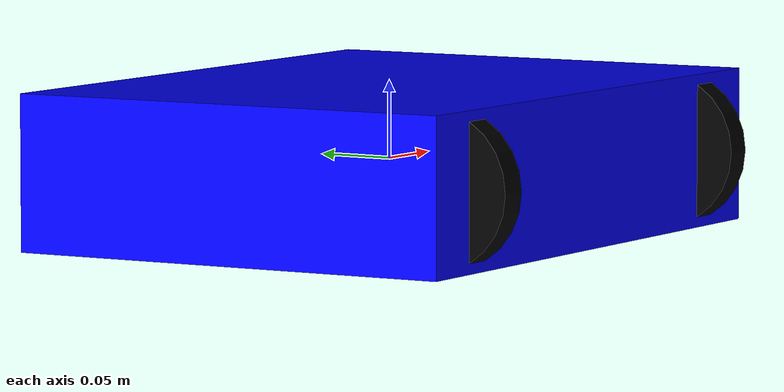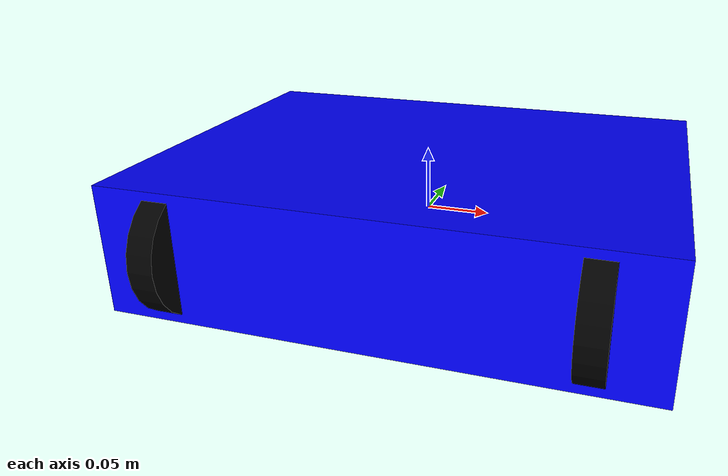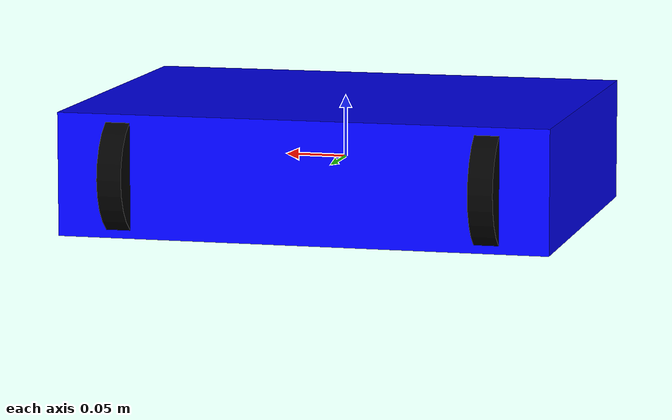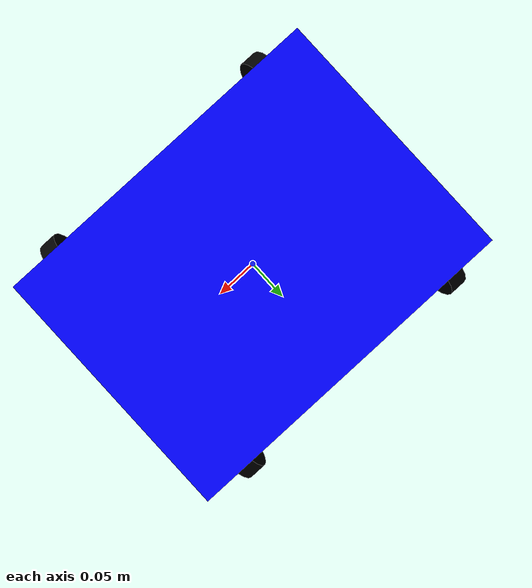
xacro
<?xml version="1.0"?>
<robot xmlns:xacro="http://www.ros.org/wiki/xacro" name="my_robot">

  <!-- ================= BODY ================= -->
  <link name="base_link">
    <visual>
      <geometry>
        <box size="0.4 0.3 0.1"/> <!-- length, width, height -->
      </geometry>
      <material name="blue">
        <color rgba="0 0 1 1"/>
      </material>
    </visual>
    <collision>
      <geometry>
        <box size="0.4 0.3 0.1"/>
      </geometry>
    </collision>
    <inertial>
      <mass value="5.0"/>
      <inertia ixx="0.1" ixy="0.0" ixz="0.0" iyy="0.1" iyz="0.0" izz="0.1"/>
    </inertial>
  </link>

  <!-- ================= WHEELS ================= -->
  <xacro:property name="wheel_radius" value="0.05"/>
  <xacro:property name="wheel_width" value="0.02"/>
  <xacro:property name="wheel_y_offset" value="0.125"/> <!-- half of width of robot -->
  <xacro:property name="wheel_x_offset" value="0.15"/>  <!-- half of length of robot -->

  <!-- Front Left Wheel -->
  <link name="wheel_fl">
    <visual>
      <geometry>
        <cylinder radius="${wheel_radius}" length="${wheel_width}"/>
      </geometry>
      <material name="black">
        <color rgba="0 0 0 1"/>
      </material>
    </visual>
    <collision>
      <geometry>
        <cylinder radius="${wheel_radius}" length="${wheel_width}"/>
      </geometry>
    </collision>
    <inertial>
      <mass value="0.2"/>
      <inertia ixx="0.001" ixy="0.0" ixz="0.0" iyy="0.001" iyz="0.0" izz="0.001"/>
    </inertial>
  </link>
  <joint name="joint_wheel_fl" type="continuous">
    <parent link="base_link"/>
    <child link="wheel_fl"/>
    <origin xyz="${wheel_x_offset} ${wheel_y_offset} 0" rpy="0 1.5708 0"/>
    <axis xyz="0 1 0"/>
  </joint>

  <!-- Front Right Wheel -->
  <link name="wheel_fr">
    <visual>
      <geometry>
        <cylinder radius="${wheel_radius}" length="${wheel_width}"/>
      </geometry>
      <material name="black">
        <color rgba="0 0 0 1"/>
      </material>
    </visual>
    <collision>
      <geometry>
        <cylinder radius="${wheel_radius}" length="${wheel_width}"/>
      </geometry>
    </collision>
    <inertial>
      <mass value="0.2"/>
      <inertia ixx="0.001" ixy="0.0" ixz="0.0" iyy="0.001" iyz="0.0" izz="0.001"/>
    </inertial>
  </link>
  <joint name="joint_wheel_fr" type="continuous">
    <parent link="base_link"/>
    <child link="wheel_fr"/>
    <origin xyz="${wheel_x_offset} -${wheel_y_offset} 0" rpy="0 1.5708 0"/>
    <axis xyz="0 1 0"/>
  </joint>

  <!-- Back Left Wheel -->
  <link name="wheel_bl">
    <visual>
      <geometry>
        <cylinder radius="${wheel_radius}" length="${wheel_width}"/>
      </geometry>
      <material name="black">
        <color rgba="0 0 0 1"/>
      </material>
    </visual>
    <collision>
      <geometry>
        <cylinder radius="${wheel_radius}" length="${wheel_width}"/>
      </geometry>
    </collision>
    <inertial>
      <mass value="0.2"/>
      <inertia ixx="0.001" ixy="0.0" ixz="0.0" iyy="0.001" iyz="0.0" izz="0.001"/>
    </inertial>
  </link>
  <joint name="joint_wheel_bl" type="continuous">
    <parent link="base_link"/>
    <child link="wheel_bl"/>
    <origin xyz="-${wheel_x_offset} ${wheel_y_offset} 0" rpy="0 1.5708 0"/>
    <axis xyz="0 1 0"/>
  </joint>

  <!-- Back Right Wheel -->
  <link name="wheel_br">
    <visual>
      <geometry>
        <cylinder radius="${wheel_radius}" length="${wheel_width}"/>
      </geometry>
      <material name="black">
        <color rgba="0 0 0 1"/>
      </material>
    </visual>
    <collision>
      <geometry>
        <cylinder radius="${wheel_radius}" length="${wheel_width}"/>
      </geometry>
    </collision>
    <inertial>
      <mass value="0.2"/>
      <inertia ixx="0.001" ixy="0.0" ixz="0.0" iyy="0.001" iyz="0.0" izz="0.001"/>
    </inertial>
  </link>
  <joint name="joint_wheel_br" type="continuous">
    <parent link="base_link"/>
    <child link="wheel_br"/>
    <origin xyz="-${wheel_x_offset} -${wheel_y_offset} 0" rpy="0 1.5708 0"/>
    <axis xyz="0 1 0"/>
  </joint>

<!-- ================= RGB-D CAMERA SENSOR ================= -->
<link name="camera_link"/>
<joint name="camera_joint" type="fixed">
  <parent link="base_link"/>
  <child link="camera_link"/>
  <origin xyz="0 0 0.2" rpy="0 0 0"/>
</joint>

<gazebo reference="camera_link">
  <sensor type="depth" name="camera_depth">
    <update_rate>30</update_rate>
    <camera>
      <horizontal_fov>1.047</horizontal_fov>
      <image>
        <width>640</width>
        <height>480</height>
        <format>R8G8B8</format>
      </image>
      <clip>
        <near>0.1</near>
        <far>5.0</far>
      </clip>
    </camera>
    <plugin name="gazebo_ros_openni_kinect" filename="libgazebo_ros_openni_kinect.so">
      <always_on>true</always_on>
      <update_rate>30</update_rate>
      <camera_name>camera</camera_name>
      <image_topic_name>color/image_raw</image_topic_name>
      <depth_image_topic_name>depth/image_raw</depth_image_topic_name>
      <point_cloud_topic_name>points</point_cloud_topic_name>
      <frame_name>camera_link</frame_name>
    </plugin>
  </sensor>
</gazebo>

  <!-- ================= Gazebo ROS2 Control Plugin ================= -->
  <gazebo>
    <plugin name="gazebo_ros2_control" filename="libgazebo_ros2_control.so"/>
  </gazebo>

</robot>
